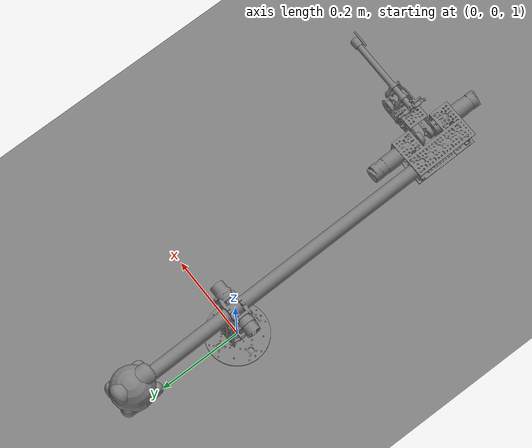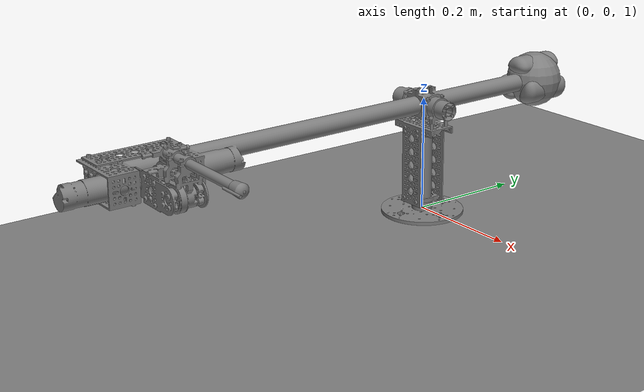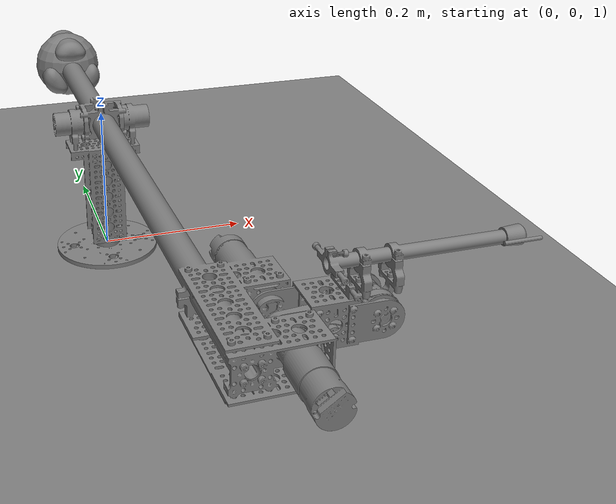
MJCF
<mujoco model="hoppy">

  <compiler meshdir="meshes/" angle="radian" balanceinertia="true"/>

  <option gravity="0 0 -9.81" timestep="0.001"
          integrator="RK4"
          solver="Newton"
          iterations="50"
          tolerance="1e-8"/>

  <default>
    <geom contype="1" conaffinity="1" friction="0.8 0.02 0.001"/>
    <joint damping="0.1"/>
  </default>

  <asset>
    <mesh name="base"  file="base.stl"  scale="0.001 0.001 0.001"/>
    <mesh name="link1" file="link1.stl" scale="0.001 0.001 0.001"/>
    <mesh name="link2" file="link2.stl" scale="0.001 0.001 0.001"/>
    <mesh name="link3" file="link3.stl" scale="0.001 0.001 0.001"/>
    <mesh name="link4" file="link4.stl" scale="0.001 0.001 0.001"/>
    <mesh name="foot"  file="foot.stl"  scale="0.001 0.001 0.001"/>
  </asset>

  <worldbody>
    <light name="top" pos="0 0 2" dir="0 0 -1" diffuse="0.8 0.8 0.8" specular="0.5 0.5 0.5" />
    <light name="ambient" pos="0 0 10" dir="0 0 -1" diffuse="0.5 0.5 0.5" specular="0.0 0.0 0.0" />

    <geom name="floor" type="plane" size="5 5 0.1" pos="0 0 0.99"
      solref="0.005 1"
      solimp="0.9 0.95 0.001 0.5 2"
      friction="1.0 0.02 0.001"/>

    <body name="base" pos="0 0 1.0">
      <inertial pos="0.025 -2.096e-4 -0.05"
                mass="0.155"
                fullinertia="4.832e-4 4.793e-4 2.892e-4 -7.479e-11 2.634e-8 -2.689e-8"/>
      <geom type="mesh" mesh="base" contype="0" conaffinity="0"/>

      <body name="link1" pos="0 0 0">
        <joint name="gantry_rotation" type="hinge" axis="0 0 1"
               damping="0.1" armature="0.0"/>
        <inertial pos="-1.368e-7 -0.078 0.011"
                  mass="0.155"
                  fullinertia="0.001 0.001 1.691e-4 -4.298e-10 -1.019e-9 -6.170e-6"/>
        <geom type="mesh" mesh="link1"/>

        <body name="link2" pos="0 0 0.19">
          <joint name="gantry_pitch" type="hinge" axis="1 0 0"
                range="-1.5708 1.5708" damping="0.5" armature="0.0"/>

          <inertial pos="0.026 -0.202 2.010e-4"
                    mass="0.831"
                    fullinertia="0.046 0.001 0.047 0.003 2.421e-6 -4.776e-5"/>
          <geom type="mesh" mesh="link2"/>

          <body name="counterweight" pos="-0.005 0.270 0">
            <geom type="sphere" size="0.05" mass="1.65"
              contype="0" conaffinity="0"/>
          </body>

          <body name="link3" pos="0.058 -0.576 0">
            <joint name="hip" type="hinge" axis="0 1 0"
                   range="-1.5708 1.5708"
                   damping="0.140"
                   armature="0.0050652"/>
            <inertial pos="0.0145 0.0315 -0.005"
                     mass="0.512"
                     fullinertia="0.001 0.001 0.001 -3.387e-4 -9.783e-6 -6.901e-6"/>
            <geom type="mesh" mesh="link3" pos="0.0475 0.0215 0"/>

            <body name="link4" pos="0.096 0.0215 0"
                  quat="0.7071 0 -0.7071 0">

                  <!--armature="0.0050652"-->
              <joint name="knee" type="hinge" axis="0 1 0"
                     range="0 3.1416"
                     damping="0.140"
                     armature="0.0050652"
                     stiffness="1.1"
                     springref="0"/>
              <inertial pos="-0.002 -0.025 -0.008"
                        mass="0.092"
                        fullinertia="2.305e-4 1.871e-4 6.687e-5 1.703e-6 1.882e-6 -1.875e-5"/>
              <geom type="mesh" mesh="link4"/>

              <geom name="foot_rubber" type="mesh" mesh="foot"
                    pos="0.052 0 -0.150"
                    contype="1" conaffinity="1"
                    friction="2.0 0.02 0.001"
                    solref="0.005 1"
                    solimp="0.99 0.999 0.001"/>

              <site name="foot_site" pos="0.052 0 -0.150" size="0.005"/>

              <body name="foot_sensor_body" pos="0.052 -0.0125 -0.1455">
                <joint name="foot_spring" type="slide" axis="0 0 -1"
                       range="-0.02 0.0"
                       stiffness="2"
                       damping="0.2"
                       springref="0.0"/>
                <inertial pos="0 0 0"
                          mass="0.005"
                          diaginertia="1e-6 1e-6 1e-6"/>
                <geom name="foot_sensor_cylinder" type="cylinder"
                      size="0.002 0.020"
                      pos="0 0 0"
                      contype="1" conaffinity="1"
                      solref="0.005 1"
                      solimp="0.99 0.999 0.001"
                      friction="1.0 0.02 0.001"/>
              </body>

            </body>
          </body>
        </body>
      </body>
    </body>

  </worldbody>

  <actuator>
    <motor name="hip_motor"  joint="hip"  gear="1"
           ctrlrange="-3.728 3.728" ctrllimited="true"/>
    <motor name="knee_motor" joint="knee" gear="1"
           ctrlrange="-3.728 3.728" ctrllimited="true"/>
  </actuator>

  <sensor>
    <jointpos name="gantry_pitch_pos" joint="gantry_pitch"/>
    <jointpos name="gantry_rot_pos"   joint="gantry_rotation"/>
    <jointpos name="hip_pos"          joint="hip"/>
    <jointpos name="knee_pos"         joint="knee"/>

    <jointvel name="gantry_pitch_vel" joint="gantry_pitch"/>
    <jointvel name="gantry_rot_vel"   joint="gantry_rotation"/>
    <jointvel name="hip_vel"          joint="hip"/>
    <jointvel name="knee_vel"         joint="knee"/>

    <actuatorfrc name="hip_torque"  actuator="hip_motor"/>
    <actuatorfrc name="knee_torque" actuator="knee_motor"/>

    <jointpos name="foot_compression" joint="foot_spring"/>
    <jointvel name="foot_spring_vel"  joint="foot_spring"/>

  </sensor>

</mujoco>
